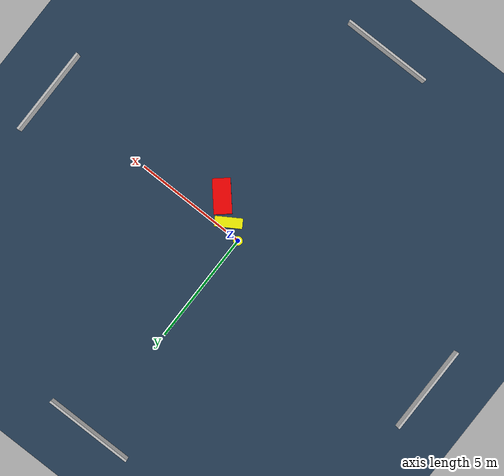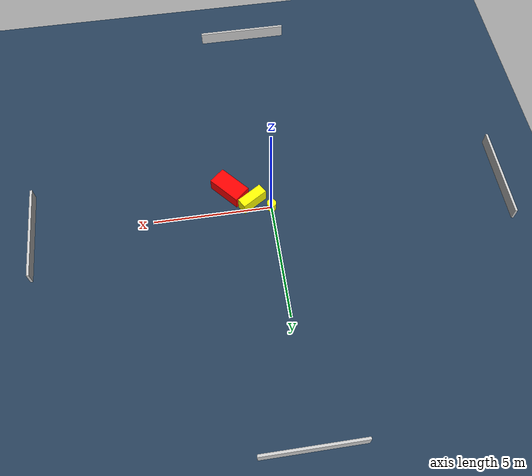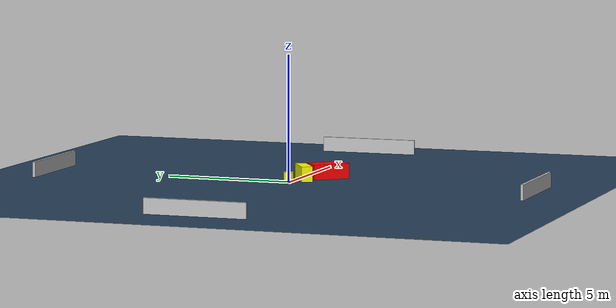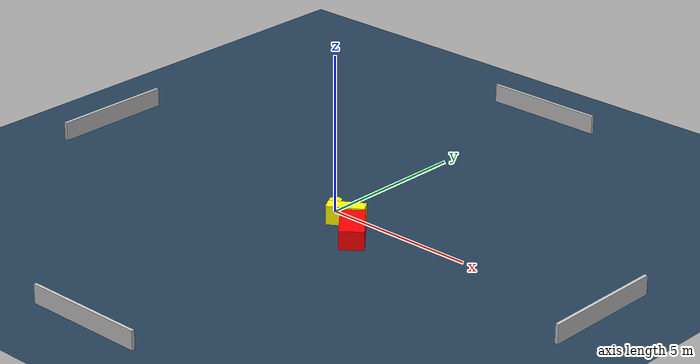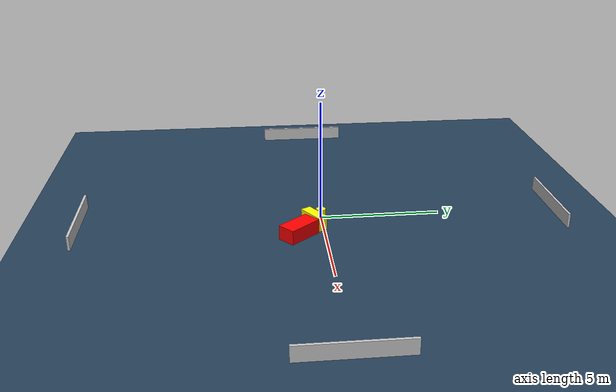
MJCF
<?xml version="1.0" ?>
<mujoco model="generated_environment">
  <option timestep="0.01" integrator="RK4" cone="elliptic"/>
  <default>
    <geom density="1"/>
  </default>
  <asset>
    <texture builtin="gradient" height="3072" name="skybox" rgb1="0.3 0.5 0.7" rgb2="0 0 0" type="skybox" width="512"/>
    <texture builtin="checker" height="300" name="groundplane" rgb1="0.2 0.3 0.4" rgb2="0.1 0.2 0.3" type="2d" width="300"/>
    <material name="groundplane" reflectance="0.2" texrepeat="5 5" texture="groundplane"/>
  </asset>
  <worldbody>
    <light dir="0 0 -1" directional="true" pos="0 0 1.5"/>
    <geom condim="3" friction="0.5 0.005 0.001" material="groundplane" name="floor" pos="0 0 0" size="0 0 0.05" type="plane"/>
    <body name="walls">
      <geom name="wall_1" condim="4" pos="-10.0 0.0 0.3" rgba="0.800000011920929 0.800000011920929 0.800000011920929 1.0" size="0.05 2.0 0.3" type="box"/>
      <geom name="wall_2" condim="4" pos="10.0 0.0 0.3" rgba="0.800000011920929 0.800000011920929 0.800000011920929 1.0" size="0.05 2.0 0.3" type="box"/>
      <geom name="wall_3" condim="4" pos="0.0 -10.0 0.3" rgba="0.800000011920929 0.800000011920929 0.800000011920929 1.0" size="2.0 0.05 0.3" type="box"/>
      <geom name="wall_4" condim="4" pos="0.0 10.0 0.3" rgba="0.800000011920929 0.800000011920929 0.800000011920929 1.0" size="2.0 0.05 0.3" type="box"/>
    </body>
    <body name="robot">
      <joint name="joint_x" type="slide" pos="0 0 0" axis="1 0 0"/>
      <joint name="joint_y" type="slide" pos="0 0 0" axis="0 1 0"/>
      <geom name="robot" type="cylinder" pos="0.0 0.0 0.2" size="0.2 0.2 0.0" mass="5.0" friction="1.0 0.005 0.0001" condim="4" rgba="1.0 1.0 0.0 1.0"/>
    </body>
    <body name="obstacle_1_movable">
      <geom name="obstacle_1_movable" condim="4" pos="0.7778082643921256 -0.3601710436415026 0.3" euler="0 0 212.3504387061598" friction="0.0 0.005 0.001" rgba="1.0 1.0 0.0 1.0" size="0.5868616929737448 0.21873884723817316 0.3" type="box" mass="0.1"/>
      <joint type="free"/>
    </body>
    <body name="obstacle_2_static">
      <geom name="obstacle_2_static" condim="4" pos="1.6589409297694433 -1.0487858063670863 0.3" euler="0 0 131.00147617875368" friction="0.0 0.005 0.001" rgba="1.0 0.0 0.0 1.0" size="0.7436965013308985 0.38604986143766545 0.3" type="box"/>
    </body>
  </worldbody>
  <actuator>
    <motor name="actuator_x" joint="joint_x" gear="1" ctrlrange="-1 1"/>
    <motor name="actuator_y" joint="joint_y" gear="1" ctrlrange="-1 1"/>
  </actuator>
</mujoco>
